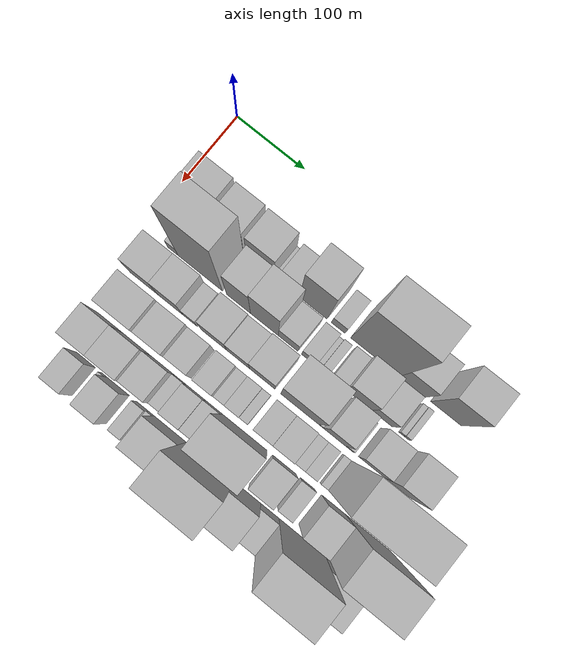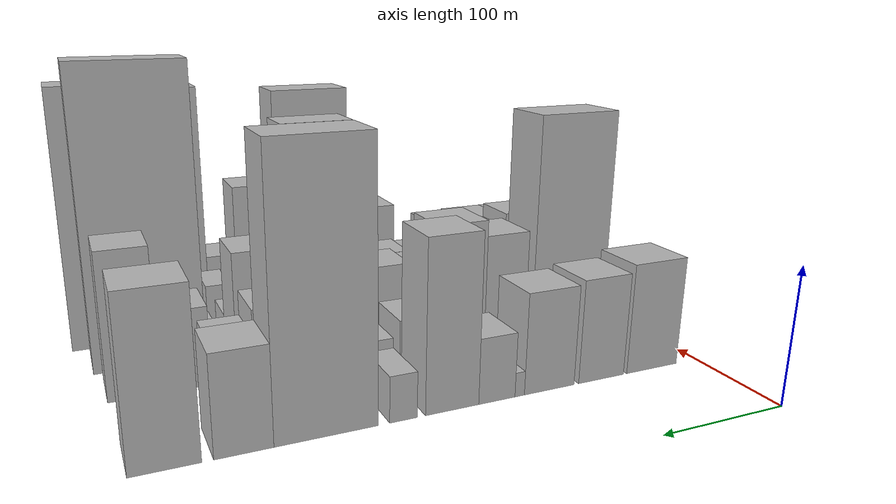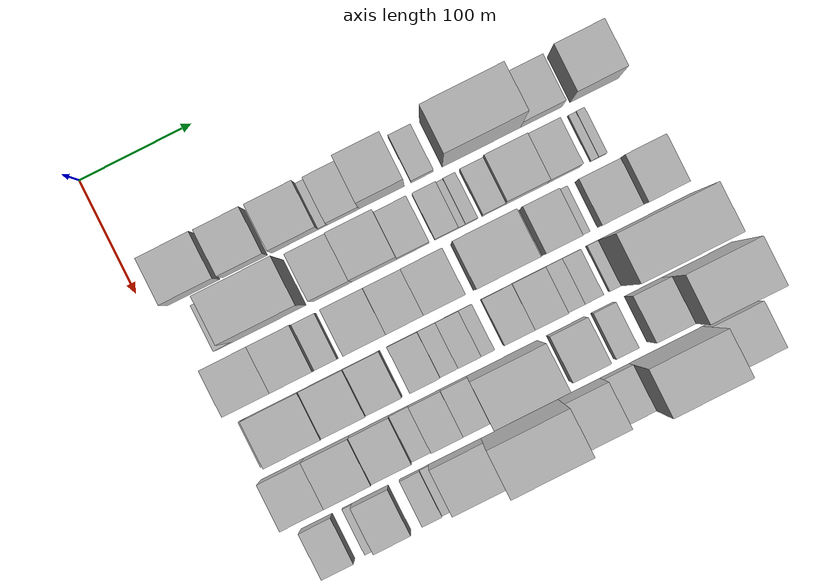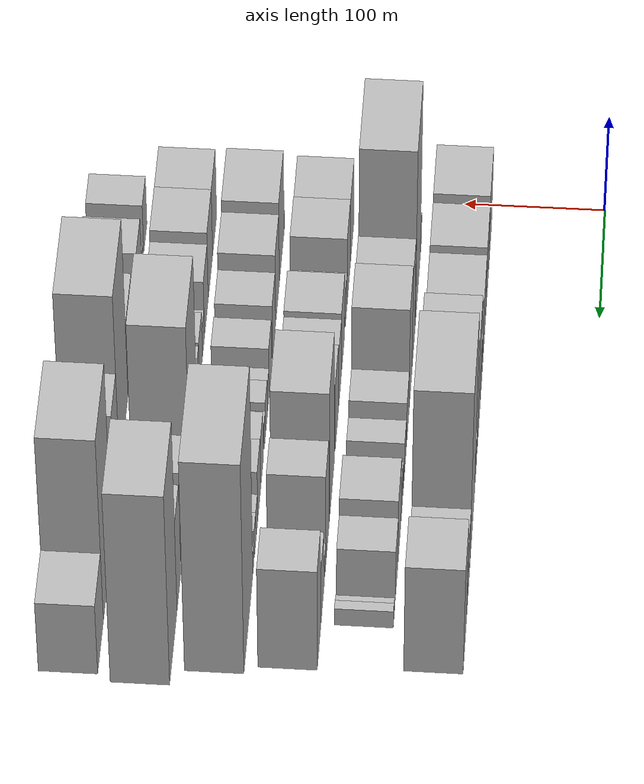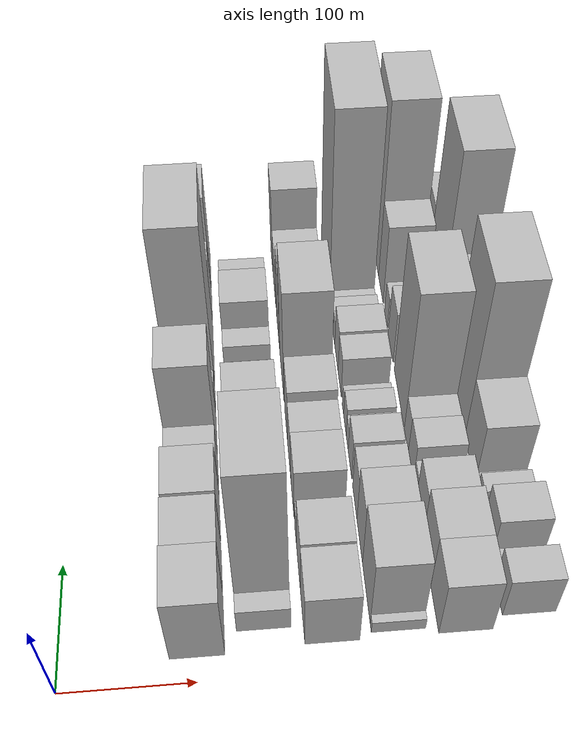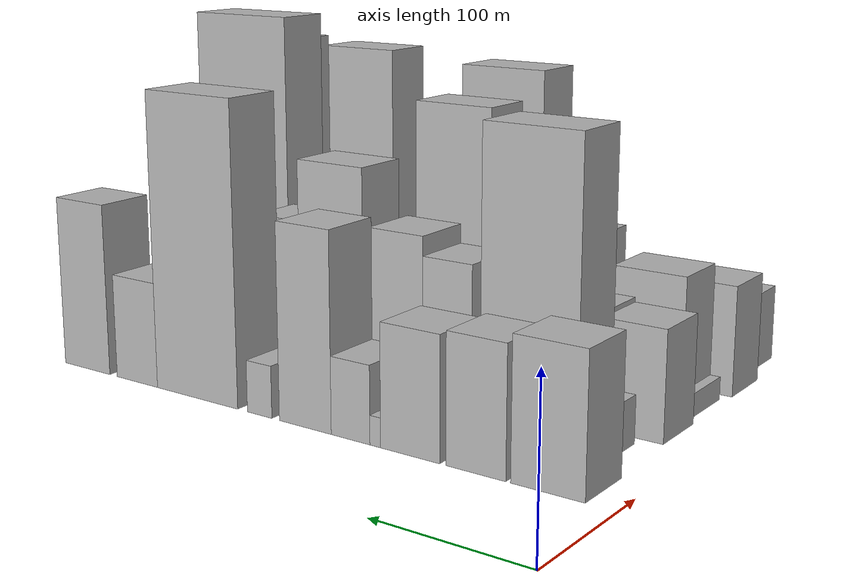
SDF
<sdf version="1.6">
 <world name="default">
  <model name="building_26">
   <static>1</static>
   <pose>100.0000 41.7516 0 0.000000 0.000000 0.000000</pose>
   <link name="link">
    <pose>0 0 42.00 0 0 0</pose>
    <collision name="collision"><geometry><box><size>40.0000 45.7160 84.0000</size></box></geometry></collision>
    <visual name="visual">
     <cast_shadows>0</cast_shadows>
     <geometry><box><size>40.0000 45.7160 84.0000</size></box></geometry>
     <material>
      <script>
       <uri>model://HANNAS_wall/materials/scripts</uri>
       <uri>model://HANNAS_wall/materials/textures</uri>
       <name>vrc/HANNAS_wall</name>
      </script>
     </material>
    </visual>
   </link>
  </model>
  <model name="building_27">
   <static>1</static>
   <pose>100.0000 87.2052 0 0.000000 0.000000 0.000000</pose>
   <link name="link">
    <pose>0 0 39.00 0 0 0</pose>
    <collision name="collision"><geometry><box><size>40.0000 39.1912 78.0000</size></box></geometry></collision>
    <visual name="visual">
     <cast_shadows>0</cast_shadows>
     <geometry><box><size>40.0000 39.1912 78.0000</size></box></geometry>
     <material>
      <script>
       <uri>model://HANNAS_wall/materials/scripts</uri>
       <uri>model://HANNAS_wall/materials/textures</uri>
       <name>vrc/HANNAS_wall</name>
      </script>
     </material>
    </visual>
   </link>
  </model>
  <model name="building_28">
   <static>1</static>
   <pose>100.0000 131.3394 0 0.000000 0.000000 0.000000</pose>
   <link name="link">
    <pose>0 0 37.50 0 0 0</pose>
    <collision name="collision"><geometry><box><size>40.0000 41.0772 75.0000</size></box></geometry></collision>
    <visual name="visual">
     <cast_shadows>0</cast_shadows>
     <geometry><box><size>40.0000 41.0772 75.0000</size></box></geometry>
     <material>
      <script>
       <uri>model://HANNAS_wall/materials/scripts</uri>
       <uri>model://HANNAS_wall/materials/textures</uri>
       <name>vrc/HANNAS_wall</name>
      </script>
     </material>
    </visual>
   </link>
  </model>
  <model name="building_29">
   <static>1</static>
   <pose>100.0000 155.6644 0 0.000000 0.000000 0.000000</pose>
   <link name="link">
    <pose>0 0 9.00 0 0 0</pose>
    <collision name="collision"><geometry><box><size>40.0000 7.5728 18.0000</size></box></geometry></collision>
    <visual name="visual">
     <cast_shadows>0</cast_shadows>
     <geometry><box><size>40.0000 7.5728 18.0000</size></box></geometry>
     <material>
      <script>
       <uri>model://HANNAS_wall/materials/scripts</uri>
       <uri>model://HANNAS_wall/materials/textures</uri>
       <name>vrc/HANNAS_wall</name>
      </script>
     </material>
    </visual>
   </link>
  </model>
  <model name="building_30">
   <static>1</static>
   <pose>100.0000 173.6696 0 0.000000 0.000000 0.000000</pose>
   <link name="link">
    <pose>0 0 24.00 0 0 0</pose>
    <collision name="collision"><geometry><box><size>40.0000 28.4376 48.0000</size></box></geometry></collision>
    <visual name="visual">
     <cast_shadows>0</cast_shadows>
     <geometry><box><size>40.0000 28.4376 48.0000</size></box></geometry>
     <material>
      <script>
       <uri>model://HANNAS_wall/materials/scripts</uri>
       <uri>model://HANNAS_wall/materials/textures</uri>
       <name>vrc/HANNAS_wall</name>
      </script>
     </material>
    </visual>
   </link>
  </model>
  <model name="building_31">
   <static>1</static>
   <pose>100.0000 207.8174 0 0.000000 0.000000 0.000000</pose>
   <link name="link">
    <pose>0 0 61.50 0 0 0</pose>
    <collision name="collision"><geometry><box><size>40.0000 39.8579 123.0000</size></box></geometry></collision>
    <visual name="visual">
     <cast_shadows>0</cast_shadows>
     <geometry><box><size>40.0000 39.8579 123.0000</size></box></geometry>
     <material>
      <script>
       <uri>model://HANNAS_wall/materials/scripts</uri>
       <uri>model://HANNAS_wall/materials/textures</uri>
       <name>vrc/HANNAS_wall</name>
      </script>
     </material>
    </visual>
   </link>
  </model>
  <model name="building_32">
   <static>1</static>
   <pose>100.0000 243.5929 0 0.000000 0.000000 0.000000</pose>
   <link name="link">
    <pose>0 0 16.50 0 0 0</pose>
    <collision name="collision"><geometry><box><size>40.0000 19.6932 33.0000</size></box></geometry></collision>
    <visual name="visual">
     <cast_shadows>0</cast_shadows>
     <geometry><box><size>40.0000 19.6932 33.0000</size></box></geometry>
     <material>
      <script>
       <uri>model://HANNAS_wall/materials/scripts</uri>
       <uri>model://HANNAS_wall/materials/textures</uri>
       <name>vrc/HANNAS_wall</name>
      </script>
     </material>
    </visual>
   </link>
  </model>
  <model name="building_33">
   <static>1</static>
   <pose>100.0000 295.9719 0 0.000000 0.000000 0.000000</pose>
   <link name="link">
    <pose>0 0 96.00 0 0 0</pose>
    <collision name="collision"><geometry><box><size>40.0000 69.0647 192.0000</size></box></geometry></collision>
    <visual name="visual">
     <cast_shadows>0</cast_shadows>
     <geometry><box><size>40.0000 69.0647 192.0000</size></box></geometry>
     <material>
      <script>
       <uri>model://HANNAS_wall/materials/scripts</uri>
       <uri>model://HANNAS_wall/materials/textures</uri>
       <name>vrc/HANNAS_wall</name>
      </script>
     </material>
    </visual>
   </link>
  </model>
  <model name="building_34">
   <static>1</static>
   <pose>100.0000 349.0040 0 0.000000 0.000000 0.000000</pose>
   <link name="link">
    <pose>0 0 34.50 0 0 0</pose>
    <collision name="collision"><geometry><box><size>40.0000 36.9994 69.0000</size></box></geometry></collision>
    <visual name="visual">
     <cast_shadows>0</cast_shadows>
     <geometry><box><size>40.0000 36.9994 69.0000</size></box></geometry>
     <material>
      <script>
       <uri>model://HANNAS_wall/materials/scripts</uri>
       <uri>model://HANNAS_wall/materials/textures</uri>
       <name>vrc/HANNAS_wall</name>
      </script>
     </material>
    </visual>
   </link>
  </model>
  <model name="building_35">
   <static>1</static>
   <pose>100.0000 395.9646 0 0.000000 0.000000 0.000000</pose>
   <link name="link">
    <pose>0 0 57.00 0 0 0</pose>
    <collision name="collision"><geometry><box><size>40.0000 42.9218 114.0000</size></box></geometry></collision>
    <visual name="visual">
     <cast_shadows>0</cast_shadows>
     <geometry><box><size>40.0000 42.9218 114.0000</size></box></geometry>
     <material>
      <script>
       <uri>model://HANNAS_wall/materials/scripts</uri>
       <uri>model://HANNAS_wall/materials/textures</uri>
       <name>vrc/HANNAS_wall</name>
      </script>
     </material>
    </visual>
   </link>
  </model>
  <model name="building_71">
   <static>1</static>
   <pose>149.0000 43.9155 0 0.000000 0.000000 0.000000</pose>
   <link name="link">
    <pose>0 0 15.00 0 0 0</pose>
    <collision name="collision"><geometry><box><size>40.0000 15.3207 30.0000</size></box></geometry></collision>
    <visual name="visual">
     <cast_shadows>0</cast_shadows>
     <geometry><box><size>40.0000 15.3207 30.0000</size></box></geometry>
     <material>
      <script>
       <uri>model://HANNAS_wall/materials/scripts</uri>
       <uri>model://HANNAS_wall/materials/textures</uri>
       <name>vrc/HANNAS_wall</name>
      </script>
     </material>
    </visual>
   </link>
  </model>
  <model name="building_72">
   <static>1</static>
   <pose>149.0000 83.9301 0 0.000000 0.000000 0.000000</pose>
   <link name="link">
    <pose>0 0 93.00 0 0 0</pose>
    <collision name="collision"><geometry><box><size>40.0000 64.7083 186.0000</size></box></geometry></collision>
    <visual name="visual">
     <cast_shadows>0</cast_shadows>
     <geometry><box><size>40.0000 64.7083 186.0000</size></box></geometry>
     <material>
      <script>
       <uri>model://HANNAS_wall/materials/scripts</uri>
       <uri>model://HANNAS_wall/materials/textures</uri>
       <name>vrc/HANNAS_wall</name>
      </script>
     </material>
    </visual>
   </link>
  </model>
  <model name="building_73">
   <static>1</static>
   <pose>149.0000 139.6266 0 0.000000 0.000000 0.000000</pose>
   <link name="link">
    <pose>0 0 51.00 0 0 0</pose>
    <collision name="collision"><geometry><box><size>40.0000 34.6848 102.0000</size></box></geometry></collision>
    <visual name="visual">
     <cast_shadows>0</cast_shadows>
     <geometry><box><size>40.0000 34.6848 102.0000</size></box></geometry>
     <material>
      <script>
       <uri>model://HANNAS_wall/materials/scripts</uri>
       <uri>model://HANNAS_wall/materials/textures</uri>
       <name>vrc/HANNAS_wall</name>
      </script>
     </material>
    </visual>
   </link>
  </model>
  <model name="building_74">
   <static>1</static>
   <pose>149.0000 176.8338 0 0.000000 0.000000 0.000000</pose>
   <link name="link">
    <pose>0 0 57.00 0 0 0</pose>
    <collision name="collision"><geometry><box><size>40.0000 39.7295 114.0000</size></box></geometry></collision>
    <visual name="visual">
     <cast_shadows>0</cast_shadows>
     <geometry><box><size>40.0000 39.7295 114.0000</size></box></geometry>
     <material>
      <script>
       <uri>model://HANNAS_wall/materials/scripts</uri>
       <uri>model://HANNAS_wall/materials/textures</uri>
       <name>vrc/HANNAS_wall</name>
      </script>
     </material>
    </visual>
   </link>
  </model>
  <model name="building_75">
   <static>1</static>
   <pose>149.0000 210.8529 0 0.000000 0.000000 0.000000</pose>
   <link name="link">
    <pose>0 0 24.00 0 0 0</pose>
    <collision name="collision"><geometry><box><size>40.0000 28.3087 48.0000</size></box></geometry></collision>
    <visual name="visual">
     <cast_shadows>0</cast_shadows>
     <geometry><box><size>40.0000 28.3087 48.0000</size></box></geometry>
     <material>
      <script>
       <uri>model://HANNAS_wall/materials/scripts</uri>
       <uri>model://HANNAS_wall/materials/textures</uri>
       <name>vrc/HANNAS_wall</name>
      </script>
     </material>
    </visual>
   </link>
  </model>
  <model name="building_76">
   <static>1</static>
   <pose>149.0000 240.3497 0 0.000000 0.000000 0.000000</pose>
   <link name="link">
    <pose>0 0 18.00 0 0 0</pose>
    <collision name="collision"><geometry><box><size>40.0000 20.6849 36.0000</size></box></geometry></collision>
    <visual name="visual">
     <cast_shadows>0</cast_shadows>
     <geometry><box><size>40.0000 20.6849 36.0000</size></box></geometry>
     <material>
      <script>
       <uri>model://HANNAS_wall/materials/scripts</uri>
       <uri>model://HANNAS_wall/materials/textures</uri>
       <name>vrc/HANNAS_wall</name>
      </script>
     </material>
    </visual>
   </link>
  </model>
  <model name="building_77">
   <static>1</static>
   <pose>149.0000 253.8900 0 0.000000 0.000000 0.000000</pose>
   <link name="link">
    <pose>0 0 7.50 0 0 0</pose>
    <collision name="collision"><geometry><box><size>40.0000 6.3957 15.0000</size></box></geometry></collision>
    <visual name="visual">
     <cast_shadows>0</cast_shadows>
     <geometry><box><size>40.0000 6.3957 15.0000</size></box></geometry>
     <material>
      <script>
       <uri>model://HANNAS_wall/materials/scripts</uri>
       <uri>model://HANNAS_wall/materials/textures</uri>
       <name>vrc/HANNAS_wall</name>
      </script>
     </material>
    </visual>
   </link>
  </model>
  <model name="building_78">
   <static>1</static>
   <pose>149.0000 262.4991 0 0.000000 0.000000 0.000000</pose>
   <link name="link">
    <pose>0 0 12.00 0 0 0</pose>
    <collision name="collision"><geometry><box><size>40.0000 10.8225 24.0000</size></box></geometry></collision>
    <visual name="visual">
     <cast_shadows>0</cast_shadows>
     <geometry><box><size>40.0000 10.8225 24.0000</size></box></geometry>
     <material>
      <script>
       <uri>model://HANNAS_wall/materials/scripts</uri>
       <uri>model://HANNAS_wall/materials/textures</uri>
       <name>vrc/HANNAS_wall</name>
      </script>
     </material>
    </visual>
   </link>
  </model>
  <model name="building_79">
   <static>1</static>
   <pose>149.0000 282.0099 0 0.000000 0.000000 0.000000</pose>
   <link name="link">
    <pose>0 0 19.50 0 0 0</pose>
    <collision name="collision"><geometry><box><size>40.0000 20.1993 39.0000</size></box></geometry></collision>
    <visual name="visual">
     <cast_shadows>0</cast_shadows>
     <geometry><box><size>40.0000 20.1993 39.0000</size></box></geometry>
     <material>
      <script>
       <uri>model://HANNAS_wall/materials/scripts</uri>
       <uri>model://HANNAS_wall/materials/textures</uri>
       <name>vrc/HANNAS_wall</name>
      </script>
     </material>
    </visual>
   </link>
  </model>
  <model name="building_80">
   <static>1</static>
   <pose>149.0000 310.8652 0 0.000000 0.000000 0.000000</pose>
   <link name="link">
    <pose>0 0 36.00 0 0 0</pose>
    <collision name="collision"><geometry><box><size>40.0000 37.5112 72.0000</size></box></geometry></collision>
    <visual name="visual">
     <cast_shadows>0</cast_shadows>
     <geometry><box><size>40.0000 37.5112 72.0000</size></box></geometry>
     <material>
      <script>
       <uri>model://HANNAS_wall/materials/scripts</uri>
       <uri>model://HANNAS_wall/materials/textures</uri>
       <name>vrc/HANNAS_wall</name>
      </script>
     </material>
    </visual>
   </link>
  </model>
  <model name="building_81">
   <static>1</static>
   <pose>149.0000 344.1254 0 0.000000 0.000000 0.000000</pose>
   <link name="link">
    <pose>0 0 27.00 0 0 0</pose>
    <collision name="collision"><geometry><box><size>40.0000 29.0091 54.0000</size></box></geometry></collision>
    <visual name="visual">
     <cast_shadows>0</cast_shadows>
     <geometry><box><size>40.0000 29.0091 54.0000</size></box></geometry>
     <material>
      <script>
       <uri>model://HANNAS_wall/materials/scripts</uri>
       <uri>model://HANNAS_wall/materials/textures</uri>
       <name>vrc/HANNAS_wall</name>
      </script>
     </material>
    </visual>
   </link>
  </model>
  <model name="building_82">
   <static>1</static>
   <pose>149.0000 371.0020 0 0.000000 0.000000 0.000000</pose>
   <link name="link">
    <pose>0 0 7.50 0 0 0</pose>
    <collision name="collision"><geometry><box><size>40.0000 6.7441 15.0000</size></box></geometry></collision>
    <visual name="visual">
     <cast_shadows>0</cast_shadows>
     <geometry><box><size>40.0000 6.7441 15.0000</size></box></geometry>
     <material>
      <script>
       <uri>model://HANNAS_wall/materials/scripts</uri>
       <uri>model://HANNAS_wall/materials/textures</uri>
       <name>vrc/HANNAS_wall</name>
      </script>
     </material>
    </visual>
   </link>
  </model>
  <model name="building_83">
   <static>1</static>
   <pose>149.0000 378.0578 0 0.000000 0.000000 0.000000</pose>
   <link name="link">
    <pose>0 0 9.00 0 0 0</pose>
    <collision name="collision"><geometry><box><size>40.0000 7.3676 18.0000</size></box></geometry></collision>
    <visual name="visual">
     <cast_shadows>0</cast_shadows>
     <geometry><box><size>40.0000 7.3676 18.0000</size></box></geometry>
     <material>
      <script>
       <uri>model://HANNAS_wall/materials/scripts</uri>
       <uri>model://HANNAS_wall/materials/textures</uri>
       <name>vrc/HANNAS_wall</name>
      </script>
     </material>
    </visual>
   </link>
  </model>
  <model name="building_120">
   <static>1</static>
   <pose>198.0000 42.8155 0 0.000000 0.000000 0.000000</pose>
   <link name="link">
    <pose>0 0 34.50 0 0 0</pose>
    <collision name="collision"><geometry><box><size>40.0000 40.9536 69.0000</size></box></geometry></collision>
    <visual name="visual">
     <cast_shadows>0</cast_shadows>
     <geometry><box><size>40.0000 40.9536 69.0000</size></box></geometry>
     <material>
      <script>
       <uri>model://HANNAS_wall/materials/scripts</uri>
       <uri>model://HANNAS_wall/materials/textures</uri>
       <name>vrc/HANNAS_wall</name>
      </script>
     </material>
    </visual>
   </link>
  </model>
  <model name="building_121">
   <static>1</static>
   <pose>198.0000 81.6802 0 0.000000 0.000000 0.000000</pose>
   <link name="link">
    <pose>0 0 36.00 0 0 0</pose>
    <collision name="collision"><geometry><box><size>40.0000 36.7758 72.0000</size></box></geometry></collision>
    <visual name="visual">
     <cast_shadows>0</cast_shadows>
     <geometry><box><size>40.0000 36.7758 72.0000</size></box></geometry>
     <material>
      <script>
       <uri>model://HANNAS_wall/materials/scripts</uri>
       <uri>model://HANNAS_wall/materials/textures</uri>
       <name>vrc/HANNAS_wall</name>
      </script>
     </material>
    </visual>
   </link>
  </model>
  <model name="building_122">
   <static>1</static>
   <pose>198.0000 110.0986 0 0.000000 0.000000 0.000000</pose>
   <link name="link">
    <pose>0 0 18.00 0 0 0</pose>
    <collision name="collision"><geometry><box><size>40.0000 20.0609 36.0000</size></box></geometry></collision>
    <visual name="visual">
     <cast_shadows>0</cast_shadows>
     <geometry><box><size>40.0000 20.0609 36.0000</size></box></geometry>
     <material>
      <script>
       <uri>model://HANNAS_wall/materials/scripts</uri>
       <uri>model://HANNAS_wall/materials/textures</uri>
       <name>vrc/HANNAS_wall</name>
      </script>
     </material>
    </visual>
   </link>
  </model>
  <model name="building_123">
   <static>1</static>
   <pose>198.0000 144.5351 0 0.000000 0.000000 0.000000</pose>
   <link name="link">
    <pose>0 0 33.00 0 0 0</pose>
    <collision name="collision"><geometry><box><size>40.0000 36.8121 66.0000</size></box></geometry></collision>
    <visual name="visual">
     <cast_shadows>0</cast_shadows>
     <geometry><box><size>40.0000 36.8121 66.0000</size></box></geometry>
     <material>
      <script>
       <uri>model://HANNAS_wall/materials/scripts</uri>
       <uri>model://HANNAS_wall/materials/textures</uri>
       <name>vrc/HANNAS_wall</name>
      </script>
     </material>
    </visual>
   </link>
  </model>
  <model name="building_124">
   <static>1</static>
   <pose>198.0000 179.2317 0 0.000000 0.000000 0.000000</pose>
   <link name="link">
    <pose>0 0 30.00 0 0 0</pose>
    <collision name="collision"><geometry><box><size>40.0000 32.5810 60.0000</size></box></geometry></collision>
    <visual name="visual">
     <cast_shadows>0</cast_shadows>
     <geometry><box><size>40.0000 32.5810 60.0000</size></box></geometry>
     <material>
      <script>
       <uri>model://HANNAS_wall/materials/scripts</uri>
       <uri>model://HANNAS_wall/materials/textures</uri>
       <name>vrc/HANNAS_wall</name>
      </script>
     </material>
    </visual>
   </link>
  </model>
  <model name="building_125">
   <static>1</static>
   <pose>198.0000 213.5311 0 0.000000 0.000000 0.000000</pose>
   <link name="link">
    <pose>0 0 36.00 0 0 0</pose>
    <collision name="collision"><geometry><box><size>40.0000 36.0178 72.0000</size></box></geometry></collision>
    <visual name="visual">
     <cast_shadows>0</cast_shadows>
     <geometry><box><size>40.0000 36.0178 72.0000</size></box></geometry>
     <material>
      <script>
       <uri>model://HANNAS_wall/materials/scripts</uri>
       <uri>model://HANNAS_wall/materials/textures</uri>
       <name>vrc/HANNAS_wall</name>
      </script>
     </material>
    </visual>
   </link>
  </model>
  <model name="building_126">
   <static>1</static>
   <pose>198.0000 266.4138 0 0.000000 0.000000 0.000000</pose>
   <link name="link">
    <pose>0 0 69.00 0 0 0</pose>
    <collision name="collision"><geometry><box><size>40.0000 53.7476 138.0000</size></box></geometry></collision>
    <visual name="visual">
     <cast_shadows>0</cast_shadows>
     <geometry><box><size>40.0000 53.7476 138.0000</size></box></geometry>
     <material>
      <script>
       <uri>model://HANNAS_wall/materials/scripts</uri>
       <uri>model://HANNAS_wall/materials/textures</uri>
       <name>vrc/HANNAS_wall</name>
      </script>
     </material>
    </visual>
   </link>
  </model>
  <model name="building_127">
   <static>1</static>
   <pose>198.0000 296.4613 0 0.000000 0.000000 0.000000</pose>
   <link name="link">
    <pose>0 0 7.50 0 0 0</pose>
    <collision name="collision"><geometry><box><size>40.0000 6.3474 15.0000</size></box></geometry></collision>
    <visual name="visual">
     <cast_shadows>0</cast_shadows>
     <geometry><box><size>40.0000 6.3474 15.0000</size></box></geometry>
     <material>
      <script>
       <uri>model://HANNAS_wall/materials/scripts</uri>
       <uri>model://HANNAS_wall/materials/textures</uri>
       <name>vrc/HANNAS_wall</name>
      </script>
     </material>
    </visual>
   </link>
  </model>
  <model name="building_128">
   <static>1</static>
   <pose>198.0000 315.2924 0 0.000000 0.000000 0.000000</pose>
   <link name="link">
    <pose>0 0 48.00 0 0 0</pose>
    <collision name="collision"><geometry><box><size>40.0000 31.3148 96.0000</size></box></geometry></collision>
    <visual name="visual">
     <cast_shadows>0</cast_shadows>
     <geometry><box><size>40.0000 31.3148 96.0000</size></box></geometry>
     <material>
      <script>
       <uri>model://HANNAS_wall/materials/scripts</uri>
       <uri>model://HANNAS_wall/materials/textures</uri>
       <name>vrc/HANNAS_wall</name>
      </script>
     </material>
    </visual>
   </link>
  </model>
  <model name="building_129">
   <static>1</static>
   <pose>198.0000 336.2710 0 0.000000 0.000000 0.000000</pose>
   <link name="link">
    <pose>0 0 12.00 0 0 0</pose>
    <collision name="collision"><geometry><box><size>40.0000 10.6424 24.0000</size></box></geometry></collision>
    <visual name="visual">
     <cast_shadows>0</cast_shadows>
     <geometry><box><size>40.0000 10.6424 24.0000</size></box></geometry>
     <material>
      <script>
       <uri>model://HANNAS_wall/materials/scripts</uri>
       <uri>model://HANNAS_wall/materials/textures</uri>
       <name>vrc/HANNAS_wall</name>
      </script>
     </material>
    </visual>
   </link>
  </model>
  <model name="building_130">
   <static>1</static>
   <pose>198.0000 367.5538 0 0.000000 0.000000 0.000000</pose>
   <link name="link">
    <pose>0 0 30.00 0 0 0</pose>
    <collision name="collision"><geometry><box><size>40.0000 35.9233 60.0000</size></box></geometry></collision>
    <visual name="visual">
     <cast_shadows>0</cast_shadows>
     <geometry><box><size>40.0000 35.9233 60.0000</size></box></geometry>
     <material>
      <script>
       <uri>model://HANNAS_wall/materials/scripts</uri>
       <uri>model://HANNAS_wall/materials/textures</uri>
       <name>vrc/HANNAS_wall</name>
      </script>
     </material>
    </visual>
   </link>
  </model>
  <model name="building_131">
   <static>1</static>
   <pose>198.0000 403.0230 0 0.000000 0.000000 0.000000</pose>
   <link name="link">
    <pose>0 0 54.00 0 0 0</pose>
    <collision name="collision"><geometry><box><size>40.0000 35.0149 108.0000</size></box></geometry></collision>
    <visual name="visual">
     <cast_shadows>0</cast_shadows>
     <geometry><box><size>40.0000 35.0149 108.0000</size></box></geometry>
     <material>
      <script>
       <uri>model://HANNAS_wall/materials/scripts</uri>
       <uri>model://HANNAS_wall/materials/textures</uri>
       <name>vrc/HANNAS_wall</name>
      </script>
     </material>
    </visual>
   </link>
  </model>
  <model name="building_163">
   <static>1</static>
   <pose>247.0000 30.8030 0 0.000000 0.000000 0.000000</pose>
   <link name="link">
    <pose>0 0 7.50 0 0 0</pose>
    <collision name="collision"><geometry><box><size>40.0000 6.8712 15.0000</size></box></geometry></collision>
    <visual name="visual">
     <cast_shadows>0</cast_shadows>
     <geometry><box><size>40.0000 6.8712 15.0000</size></box></geometry>
     <material>
      <script>
       <uri>model://HANNAS_wall/materials/scripts</uri>
       <uri>model://HANNAS_wall/materials/textures</uri>
       <name>vrc/HANNAS_wall</name>
      </script>
     </material>
    </visual>
   </link>
  </model>
  <model name="building_164">
   <static>1</static>
   <pose>247.0000 58.6574 0 0.000000 0.000000 0.000000</pose>
   <link name="link">
    <pose>0 0 43.50 0 0 0</pose>
    <collision name="collision"><geometry><box><size>40.0000 48.8375 87.0000</size></box></geometry></collision>
    <visual name="visual">
     <cast_shadows>0</cast_shadows>
     <geometry><box><size>40.0000 48.8375 87.0000</size></box></geometry>
     <material>
      <script>
       <uri>model://HANNAS_wall/materials/scripts</uri>
       <uri>model://HANNAS_wall/materials/textures</uri>
       <name>vrc/HANNAS_wall</name>
      </script>
     </material>
    </visual>
   </link>
  </model>
  <model name="building_165">
   <static>1</static>
   <pose>247.0000 101.9834 0 0.000000 0.000000 0.000000</pose>
   <link name="link">
    <pose>0 0 37.50 0 0 0</pose>
    <collision name="collision"><geometry><box><size>40.0000 37.8145 75.0000</size></box></geometry></collision>
    <visual name="visual">
     <cast_shadows>0</cast_shadows>
     <geometry><box><size>40.0000 37.8145 75.0000</size></box></geometry>
     <material>
      <script>
       <uri>model://HANNAS_wall/materials/scripts</uri>
       <uri>model://HANNAS_wall/materials/textures</uri>
       <name>vrc/HANNAS_wall</name>
      </script>
     </material>
    </visual>
   </link>
  </model>
  <model name="building_166">
   <static>1</static>
   <pose>247.0000 136.3936 0 0.000000 0.000000 0.000000</pose>
   <link name="link">
    <pose>0 0 28.50 0 0 0</pose>
    <collision name="collision"><geometry><box><size>40.0000 31.0060 57.0000</size></box></geometry></collision>
    <visual name="visual">
     <cast_shadows>0</cast_shadows>
     <geometry><box><size>40.0000 31.0060 57.0000</size></box></geometry>
     <material>
      <script>
       <uri>model://HANNAS_wall/materials/scripts</uri>
       <uri>model://HANNAS_wall/materials/textures</uri>
       <name>vrc/HANNAS_wall</name>
      </script>
     </material>
    </visual>
   </link>
  </model>
  <model name="building_167">
   <static>1</static>
   <pose>247.0000 172.0464 0 0.000000 0.000000 0.000000</pose>
   <link name="link">
    <pose>0 0 25.50 0 0 0</pose>
    <collision name="collision"><geometry><box><size>40.0000 26.2995 51.0000</size></box></geometry></collision>
    <visual name="visual">
     <cast_shadows>0</cast_shadows>
     <geometry><box><size>40.0000 26.2995 51.0000</size></box></geometry>
     <material>
      <script>
       <uri>model://HANNAS_wall/materials/scripts</uri>
       <uri>model://HANNAS_wall/materials/textures</uri>
       <name>vrc/HANNAS_wall</name>
      </script>
     </material>
    </visual>
   </link>
  </model>
  <model name="building_168">
   <static>1</static>
   <pose>247.0000 193.0469 0 0.000000 0.000000 0.000000</pose>
   <link name="link">
    <pose>0 0 15.00 0 0 0</pose>
    <collision name="collision"><geometry><box><size>40.0000 15.7016 30.0000</size></box></geometry></collision>
    <visual name="visual">
     <cast_shadows>0</cast_shadows>
     <geometry><box><size>40.0000 15.7016 30.0000</size></box></geometry>
     <material>
      <script>
       <uri>model://HANNAS_wall/materials/scripts</uri>
       <uri>model://HANNAS_wall/materials/textures</uri>
       <name>vrc/HANNAS_wall</name>
      </script>
     </material>
    </visual>
   </link>
  </model>
  <model name="building_169">
   <static>1</static>
   <pose>247.0000 211.0040 0 0.000000 0.000000 0.000000</pose>
   <link name="link">
    <pose>0 0 18.00 0 0 0</pose>
    <collision name="collision"><geometry><box><size>40.0000 20.2125 36.0000</size></box></geometry></collision>
    <visual name="visual">
     <cast_shadows>0</cast_shadows>
     <geometry><box><size>40.0000 20.2125 36.0000</size></box></geometry>
     <material>
      <script>
       <uri>model://HANNAS_wall/materials/scripts</uri>
       <uri>model://HANNAS_wall/materials/textures</uri>
       <name>vrc/HANNAS_wall</name>
      </script>
     </material>
    </visual>
   </link>
  </model>
  <model name="building_170">
   <static>1</static>
   <pose>247.0000 227.0635 0 0.000000 0.000000 0.000000</pose>
   <link name="link">
    <pose>0 0 13.50 0 0 0</pose>
    <collision name="collision"><geometry><box><size>40.0000 11.9064 27.0000</size></box></geometry></collision>
    <visual name="visual">
     <cast_shadows>0</cast_shadows>
     <geometry><box><size>40.0000 11.9064 27.0000</size></box></geometry>
     <material>
      <script>
       <uri>model://HANNAS_wall/materials/scripts</uri>
       <uri>model://HANNAS_wall/materials/textures</uri>
       <name>vrc/HANNAS_wall</name>
      </script>
     </material>
    </visual>
   </link>
  </model>
  <model name="building_171">
   <static>1</static>
   <pose>247.0000 254.2678 0 0.000000 0.000000 0.000000</pose>
   <link name="link">
    <pose>0 0 25.50 0 0 0</pose>
    <collision name="collision"><geometry><box><size>40.0000 26.5023 51.0000</size></box></geometry></collision>
    <visual name="visual">
     <cast_shadows>0</cast_shadows>
     <geometry><box><size>40.0000 26.5023 51.0000</size></box></geometry>
     <material>
      <script>
       <uri>model://HANNAS_wall/materials/scripts</uri>
       <uri>model://HANNAS_wall/materials/textures</uri>
       <name>vrc/HANNAS_wall</name>
      </script>
     </material>
    </visual>
   </link>
  </model>
  <model name="building_172">
   <static>1</static>
   <pose>247.0000 282.0640 0 0.000000 0.000000 0.000000</pose>
   <link name="link">
    <pose>0 0 27.00 0 0 0</pose>
    <collision name="collision"><geometry><box><size>40.0000 29.0901 54.0000</size></box></geometry></collision>
    <visual name="visual">
     <cast_shadows>0</cast_shadows>
     <geometry><box><size>40.0000 29.0901 54.0000</size></box></geometry>
     <material>
      <script>
       <uri>model://HANNAS_wall/materials/scripts</uri>
       <uri>model://HANNAS_wall/materials/textures</uri>
       <name>vrc/HANNAS_wall</name>
      </script>
     </material>
    </visual>
   </link>
  </model>
  <model name="building_173">
   <static>1</static>
   <pose>247.0000 304.3781 0 0.000000 0.000000 0.000000</pose>
   <link name="link">
    <pose>0 0 15.00 0 0 0</pose>
    <collision name="collision"><geometry><box><size>40.0000 15.5381 30.0000</size></box></geometry></collision>
    <visual name="visual">
     <cast_shadows>0</cast_shadows>
     <geometry><box><size>40.0000 15.5381 30.0000</size></box></geometry>
     <material>
      <script>
       <uri>model://HANNAS_wall/materials/scripts</uri>
       <uri>model://HANNAS_wall/materials/textures</uri>
       <name>vrc/HANNAS_wall</name>
      </script>
     </material>
    </visual>
   </link>
  </model>
  <model name="building_174">
   <static>1</static>
   <pose>247.0000 320.2747 0 0.000000 0.000000 0.000000</pose>
   <link name="link">
    <pose>0 0 15.00 0 0 0</pose>
    <collision name="collision"><geometry><box><size>40.0000 16.2552 30.0000</size></box></geometry></collision>
    <visual name="visual">
     <cast_shadows>0</cast_shadows>
     <geometry><box><size>40.0000 16.2552 30.0000</size></box></geometry>
     <material>
      <script>
       <uri>model://HANNAS_wall/materials/scripts</uri>
       <uri>model://HANNAS_wall/materials/textures</uri>
       <name>vrc/HANNAS_wall</name>
      </script>
     </material>
    </visual>
   </link>
  </model>
  <model name="building_175">
   <static>1</static>
   <pose>247.0000 339.2530 0 0.000000 0.000000 0.000000</pose>
   <link name="link">
    <pose>0 0 10.50 0 0 0</pose>
    <collision name="collision"><geometry><box><size>40.0000 9.7012 21.0000</size></box></geometry></collision>
    <visual name="visual">
     <cast_shadows>0</cast_shadows>
     <geometry><box><size>40.0000 9.7012 21.0000</size></box></geometry>
     <material>
      <script>
       <uri>model://HANNAS_wall/materials/scripts</uri>
       <uri>model://HANNAS_wall/materials/textures</uri>
       <name>vrc/HANNAS_wall</name>
      </script>
     </material>
    </visual>
   </link>
  </model>
  <model name="building_176">
   <static>1</static>
   <pose>247.0000 385.3731 0 0.000000 0.000000 0.000000</pose>
   <link name="link">
    <pose>0 0 112.50 0 0 0</pose>
    <collision name="collision"><geometry><box><size>40.0000 82.5391 225.0000</size></box></geometry></collision>
    <visual name="visual">
     <cast_shadows>0</cast_shadows>
     <geometry><box><size>40.0000 82.5391 225.0000</size></box></geometry>
     <material>
      <script>
       <uri>model://HANNAS_wall/materials/scripts</uri>
       <uri>model://HANNAS_wall/materials/textures</uri>
       <name>vrc/HANNAS_wall</name>
      </script>
     </material>
    </visual>
   </link>
  </model>
  <model name="building_214">
   <static>1</static>
   <pose>296.0000 41.5707 0 0.000000 0.000000 0.000000</pose>
   <link name="link">
    <pose>0 0 36.00 0 0 0</pose>
    <collision name="collision"><geometry><box><size>40.0000 37.5939 72.0000</size></box></geometry></collision>
    <visual name="visual">
     <cast_shadows>0</cast_shadows>
     <geometry><box><size>40.0000 37.5939 72.0000</size></box></geometry>
     <material>
      <script>
       <uri>model://HANNAS_wall/materials/scripts</uri>
       <uri>model://HANNAS_wall/materials/textures</uri>
       <name>vrc/HANNAS_wall</name>
      </script>
     </material>
    </visual>
   </link>
  </model>
  <model name="building_215">
   <static>1</static>
   <pose>296.0000 80.5927 0 0.000000 0.000000 0.000000</pose>
   <link name="link">
    <pose>0 0 36.00 0 0 0</pose>
    <collision name="collision"><geometry><box><size>40.0000 40.4500 72.0000</size></box></geometry></collision>
    <visual name="visual">
     <cast_shadows>0</cast_shadows>
     <geometry><box><size>40.0000 40.4500 72.0000</size></box></geometry>
     <material>
      <script>
       <uri>model://HANNAS_wall/materials/scripts</uri>
       <uri>model://HANNAS_wall/materials/textures</uri>
       <name>vrc/HANNAS_wall</name>
      </script>
     </material>
    </visual>
   </link>
  </model>
  <model name="building_216">
   <static>1</static>
   <pose>296.0000 118.1977 0 0.000000 0.000000 0.000000</pose>
   <link name="link">
    <pose>0 0 30.00 0 0 0</pose>
    <collision name="collision"><geometry><box><size>40.0000 34.7600 60.0000</size></box></geometry></collision>
    <visual name="visual">
     <cast_shadows>0</cast_shadows>
     <geometry><box><size>40.0000 34.7600 60.0000</size></box></geometry>
     <material>
      <script>
       <uri>model://HANNAS_wall/materials/scripts</uri>
       <uri>model://HANNAS_wall/materials/textures</uri>
       <name>vrc/HANNAS_wall</name>
      </script>
     </material>
    </visual>
   </link>
  </model>
  <model name="building_217">
   <static>1</static>
   <pose>296.0000 144.1388 0 0.000000 0.000000 0.000000</pose>
   <link name="link">
    <pose>0 0 15.00 0 0 0</pose>
    <collision name="collision"><geometry><box><size>40.0000 17.1223 30.0000</size></box></geometry></collision>
    <visual name="visual">
     <cast_shadows>0</cast_shadows>
     <geometry><box><size>40.0000 17.1223 30.0000</size></box></geometry>
     <material>
      <script>
       <uri>model://HANNAS_wall/materials/scripts</uri>
       <uri>model://HANNAS_wall/materials/textures</uri>
       <name>vrc/HANNAS_wall</name>
      </script>
     </material>
    </visual>
   </link>
  </model>
  <model name="building_218">
   <static>1</static>
   <pose>296.0000 166.6260 0 0.000000 0.000000 0.000000</pose>
   <link name="link">
    <pose>0 0 24.00 0 0 0</pose>
    <collision name="collision"><geometry><box><size>40.0000 27.8521 48.0000</size></box></geometry></collision>
    <visual name="visual">
     <cast_shadows>0</cast_shadows>
     <geometry><box><size>40.0000 27.8521 48.0000</size></box></geometry>
     <material>
      <script>
       <uri>model://HANNAS_wall/materials/scripts</uri>
       <uri>model://HANNAS_wall/materials/textures</uri>
       <name>vrc/HANNAS_wall</name>
      </script>
     </material>
    </visual>
   </link>
  </model>
  <model name="building_219">
   <static>1</static>
   <pose>296.0000 192.2478 0 0.000000 0.000000 0.000000</pose>
   <link name="link">
    <pose>0 0 22.50 0 0 0</pose>
    <collision name="collision"><geometry><box><size>40.0000 23.3914 45.0000</size></box></geometry></collision>
    <visual name="visual">
     <cast_shadows>0</cast_shadows>
     <geometry><box><size>40.0000 23.3914 45.0000</size></box></geometry>
     <material>
      <script>
       <uri>model://HANNAS_wall/materials/scripts</uri>
       <uri>model://HANNAS_wall/materials/textures</uri>
       <name>vrc/HANNAS_wall</name>
      </script>
     </material>
    </visual>
   </link>
  </model>
  <model name="building_220">
   <static>1</static>
   <pose>296.0000 235.3775 0 0.000000 0.000000 0.000000</pose>
   <link name="link">
    <pose>0 0 84.00 0 0 0</pose>
    <collision name="collision"><geometry><box><size>40.0000 62.8680 168.0000</size></box></geometry></collision>
    <visual name="visual">
     <cast_shadows>0</cast_shadows>
     <geometry><box><size>40.0000 62.8680 168.0000</size></box></geometry>
     <material>
      <script>
       <uri>model://HANNAS_wall/materials/scripts</uri>
       <uri>model://HANNAS_wall/materials/textures</uri>
       <name>vrc/HANNAS_wall</name>
      </script>
     </material>
    </visual>
   </link>
  </model>
  <model name="building_221">
   <static>1</static>
   <pose>296.0000 291.4276 0 0.000000 0.000000 0.000000</pose>
   <link name="link">
    <pose>0 0 31.50 0 0 0</pose>
    <collision name="collision"><geometry><box><size>40.0000 33.2322 63.0000</size></box></geometry></collision>
    <visual name="visual">
     <cast_shadows>0</cast_shadows>
     <geometry><box><size>40.0000 33.2322 63.0000</size></box></geometry>
     <material>
      <script>
       <uri>model://HANNAS_wall/materials/scripts</uri>
       <uri>model://HANNAS_wall/materials/textures</uri>
       <name>vrc/HANNAS_wall</name>
      </script>
     </material>
    </visual>
   </link>
  </model>
  <model name="building_222">
   <static>1</static>
   <pose>296.0000 323.9221 0 0.000000 0.000000 0.000000</pose>
   <link name="link">
    <pose>0 0 19.50 0 0 0</pose>
    <collision name="collision"><geometry><box><size>40.0000 19.7568 39.0000</size></box></geometry></collision>
    <visual name="visual">
     <cast_shadows>0</cast_shadows>
     <geometry><box><size>40.0000 19.7568 39.0000</size></box></geometry>
     <material>
      <script>
       <uri>model://HANNAS_wall/materials/scripts</uri>
       <uri>model://HANNAS_wall/materials/textures</uri>
       <name>vrc/HANNAS_wall</name>
      </script>
     </material>
    </visual>
   </link>
  </model>
  <model name="building_223">
   <static>1</static>
   <pose>296.0000 360.3204 0 0.000000 0.000000 0.000000</pose>
   <link name="link">
    <pose>0 0 48.00 0 0 0</pose>
    <collision name="collision"><geometry><box><size>40.0000 33.0399 96.0000</size></box></geometry></collision>
    <visual name="visual">
     <cast_shadows>0</cast_shadows>
     <geometry><box><size>40.0000 33.0399 96.0000</size></box></geometry>
     <material>
      <script>
       <uri>model://HANNAS_wall/materials/scripts</uri>
       <uri>model://HANNAS_wall/materials/textures</uri>
       <name>vrc/HANNAS_wall</name>
      </script>
     </material>
    </visual>
   </link>
  </model>
  <model name="building_224">
   <static>1</static>
   <pose>296.0000 408.0690 0 0.000000 0.000000 0.000000</pose>
   <link name="link">
    <pose>0 0 102.00 0 0 0</pose>
    <collision name="collision"><geometry><box><size>40.0000 62.4572 204.0000</size></box></geometry></collision>
    <visual name="visual">
     <cast_shadows>0</cast_shadows>
     <geometry><box><size>40.0000 62.4572 204.0000</size></box></geometry>
     <material>
      <script>
       <uri>model://HANNAS_wall/materials/scripts</uri>
       <uri>model://HANNAS_wall/materials/textures</uri>
       <name>vrc/HANNAS_wall</name>
      </script>
     </material>
    </visual>
   </link>
  </model>
  <model name="building_261">
   <static>1</static>
   <pose>345.0000 46.7508 0 0.000000 0.000000 0.000000</pose>
   <link name="link">
    <pose>0 0 25.50 0 0 0</pose>
    <collision name="collision"><geometry><box><size>40.0000 27.7638 51.0000</size></box></geometry></collision>
    <visual name="visual">
     <cast_shadows>0</cast_shadows>
     <geometry><box><size>40.0000 27.7638 51.0000</size></box></geometry>
     <material>
      <script>
       <uri>model://HANNAS_wall/materials/scripts</uri>
       <uri>model://HANNAS_wall/materials/textures</uri>
       <name>vrc/HANNAS_wall</name>
      </script>
     </material>
    </visual>
   </link>
  </model>
  <model name="building_262">
   <static>1</static>
   <pose>345.0000 73.7641 0 0.000000 0.000000 0.000000</pose>
   <link name="link">
    <pose>0 0 9.00 0 0 0</pose>
    <collision name="collision"><geometry><box><size>40.0000 8.2629 18.0000</size></box></geometry></collision>
    <visual name="visual">
     <cast_shadows>0</cast_shadows>
     <geometry><box><size>40.0000 8.2629 18.0000</size></box></geometry>
     <material>
      <script>
       <uri>model://HANNAS_wall/materials/scripts</uri>
       <uri>model://HANNAS_wall/materials/textures</uri>
       <name>vrc/HANNAS_wall</name>
      </script>
     </material>
    </visual>
   </link>
  </model>
  <model name="building_263">
   <static>1</static>
   <pose>345.0000 94.0447 0 0.000000 0.000000 0.000000</pose>
   <link name="link">
    <pose>0 0 28.50 0 0 0</pose>
    <collision name="collision"><geometry><box><size>40.0000 32.2982 57.0000</size></box></geometry></collision>
    <visual name="visual">
     <cast_shadows>0</cast_shadows>
     <geometry><box><size>40.0000 32.2982 57.0000</size></box></geometry>
     <material>
      <script>
       <uri>model://HANNAS_wall/materials/scripts</uri>
       <uri>model://HANNAS_wall/materials/textures</uri>
       <name>vrc/HANNAS_wall</name>
      </script>
     </material>
    </visual>
   </link>
  </model>
  <model name="building_264">
   <static>1</static>
   <pose>345.0000 128.9007 0 0.000000 0.000000 0.000000</pose>
   <link name="link">
    <pose>0 0 15.00 0 0 0</pose>
    <collision name="collision"><geometry><box><size>40.0000 17.4139 30.0000</size></box></geometry></collision>
    <visual name="visual">
     <cast_shadows>0</cast_shadows>
     <geometry><box><size>40.0000 17.4139 30.0000</size></box></geometry>
     <material>
      <script>
       <uri>model://HANNAS_wall/materials/scripts</uri>
       <uri>model://HANNAS_wall/materials/textures</uri>
       <name>vrc/HANNAS_wall</name>
      </script>
     </material>
    </visual>
   </link>
  </model>
  <model name="building_265">
   <static>1</static>
   <pose>345.0000 141.7816 0 0.000000 0.000000 0.000000</pose>
   <link name="link">
    <pose>0 0 9.00 0 0 0</pose>
    <collision name="collision"><geometry><box><size>40.0000 8.3478 18.0000</size></box></geometry></collision>
    <visual name="visual">
     <cast_shadows>0</cast_shadows>
     <geometry><box><size>40.0000 8.3478 18.0000</size></box></geometry>
     <material>
      <script>
       <uri>model://HANNAS_wall/materials/scripts</uri>
       <uri>model://HANNAS_wall/materials/textures</uri>
       <name>vrc/HANNAS_wall</name>
      </script>
     </material>
    </visual>
   </link>
  </model>
  <model name="building_266">
   <static>1</static>
   <pose>345.0000 169.1014 0 0.000000 0.000000 0.000000</pose>
   <link name="link">
    <pose>0 0 39.00 0 0 0</pose>
    <collision name="collision"><geometry><box><size>40.0000 46.2920 78.0000</size></box></geometry></collision>
    <visual name="visual">
     <cast_shadows>0</cast_shadows>
     <geometry><box><size>40.0000 46.2920 78.0000</size></box></geometry>
     <material>
      <script>
       <uri>model://HANNAS_wall/materials/scripts</uri>
       <uri>model://HANNAS_wall/materials/textures</uri>
       <name>vrc/HANNAS_wall</name>
      </script>
     </material>
    </visual>
   </link>
  </model>
  <model name="building_267">
   <static>1</static>
   <pose>345.0000 226.3573 0 0.000000 0.000000 0.000000</pose>
   <link name="link">
    <pose>0 0 94.50 0 0 0</pose>
    <collision name="collision"><geometry><box><size>40.0000 68.2197 189.0000</size></box></geometry></collision>
    <visual name="visual">
     <cast_shadows>0</cast_shadows>
     <geometry><box><size>40.0000 68.2197 189.0000</size></box></geometry>
     <material>
      <script>
       <uri>model://HANNAS_wall/materials/scripts</uri>
       <uri>model://HANNAS_wall/materials/textures</uri>
       <name>vrc/HANNAS_wall</name>
      </script>
     </material>
    </visual>
   </link>
  </model>
  <model name="building_268">
   <static>1</static>
   <pose>345.0000 279.0923 0 0.000000 0.000000 0.000000</pose>
   <link name="link">
    <pose>0 0 54.00 0 0 0</pose>
    <collision name="collision"><geometry><box><size>40.0000 37.2504 108.0000</size></box></geometry></collision>
    <visual name="visual">
     <cast_shadows>0</cast_shadows>
     <geometry><box><size>40.0000 37.2504 108.0000</size></box></geometry>
     <material>
      <script>
       <uri>model://HANNAS_wall/materials/scripts</uri>
       <uri>model://HANNAS_wall/materials/textures</uri>
       <name>vrc/HANNAS_wall</name>
      </script>
     </material>
    </visual>
   </link>
  </model>
  <model name="building_269">
   <static>1</static>
   <pose>345.0000 310.5408 0 0.000000 0.000000 0.000000</pose>
   <link name="link">
    <pose>0 0 24.00 0 0 0</pose>
    <collision name="collision"><geometry><box><size>40.0000 25.6466 48.0000</size></box></geometry></collision>
    <visual name="visual">
     <cast_shadows>0</cast_shadows>
     <geometry><box><size>40.0000 25.6466 48.0000</size></box></geometry>
     <material>
      <script>
       <uri>model://HANNAS_wall/materials/scripts</uri>
       <uri>model://HANNAS_wall/materials/textures</uri>
       <name>vrc/HANNAS_wall</name>
      </script>
     </material>
    </visual>
   </link>
  </model>
  <model name="building_270">
   <static>1</static>
   <pose>345.0000 356.0283 0 0.000000 0.000000 0.000000</pose>
   <link name="link">
    <pose>0 0 97.50 0 0 0</pose>
    <collision name="collision"><geometry><box><size>40.0000 65.3285 195.0000</size></box></geometry></collision>
    <visual name="visual">
     <cast_shadows>0</cast_shadows>
     <geometry><box><size>40.0000 65.3285 195.0000</size></box></geometry>
     <material>
      <script>
       <uri>model://HANNAS_wall/materials/scripts</uri>
       <uri>model://HANNAS_wall/materials/textures</uri>
       <name>vrc/HANNAS_wall</name>
      </script>
     </material>
    </visual>
   </link>
  </model>
  <model name="building_271">
   <static>1</static>
   <pose>345.0000 410.9085 0 0.000000 0.000000 0.000000</pose>
   <link name="link">
    <pose>0 0 37.50 0 0 0</pose>
    <collision name="collision"><geometry><box><size>40.0000 44.4321 75.0000</size></box></geometry></collision>
    <visual name="visual">
     <cast_shadows>0</cast_shadows>
     <geometry><box><size>40.0000 44.4321 75.0000</size></box></geometry>
     <material>
      <script>
       <uri>model://HANNAS_wall/materials/scripts</uri>
       <uri>model://HANNAS_wall/materials/textures</uri>
       <name>vrc/HANNAS_wall</name>
      </script>
     </material>
    </visual>
   </link>
  </model>
 </world>
</sdf>
